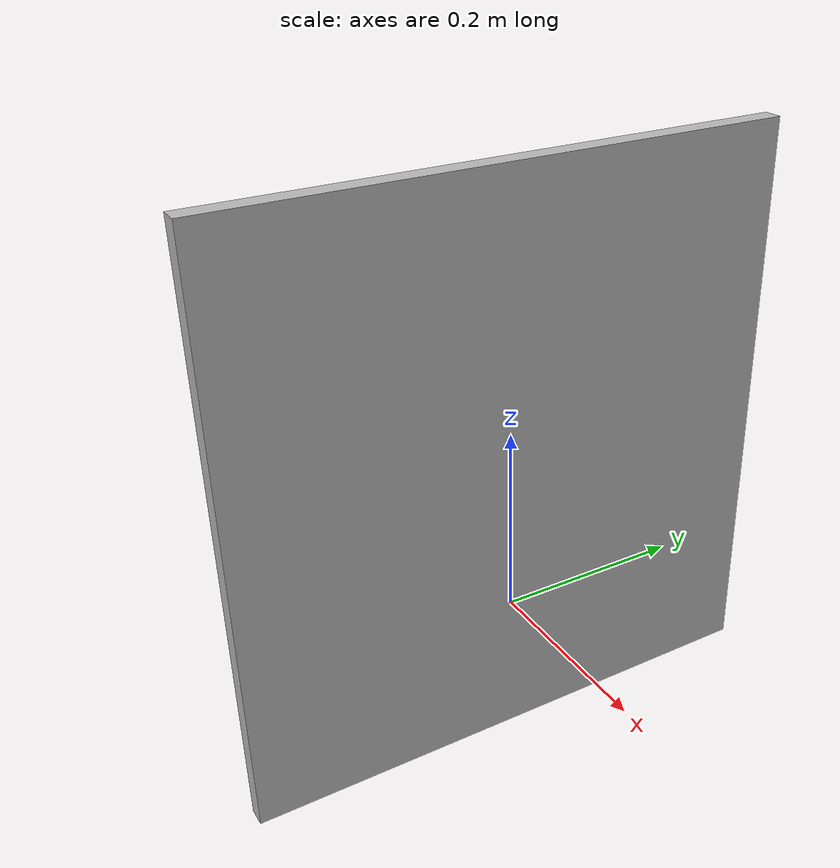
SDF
<?xml version="1.0"?>
<sdf version="1.6">
  <model name="person_sign_09">
    <static>true</static>
    <link name="sign">
      <visual name="visual">
        <pose>0 0 0.16 0 0 0</pose>
        <geometry>
          <box>
            <size>0.02 0.6 0.62</size>
          </box>
        </geometry>
        <material>
          <script>
            <uri>model://photo_signs/person_sign_09/materials/scripts</uri>
            <uri>model://photo_signs/person_sign_09/materials/textures</uri>
            <name>PhotoSign/person_sign_09</name>
          </script>
        </material>
      </visual>
    </link>
  </model>
</sdf>
